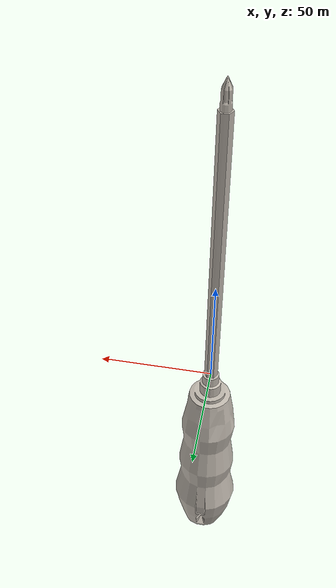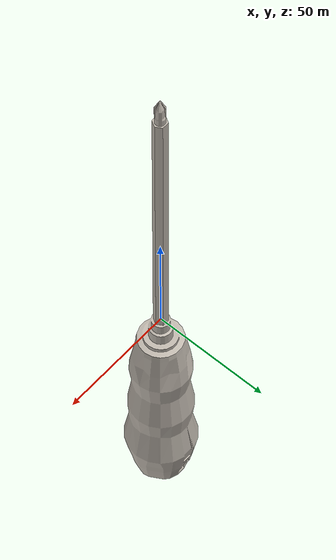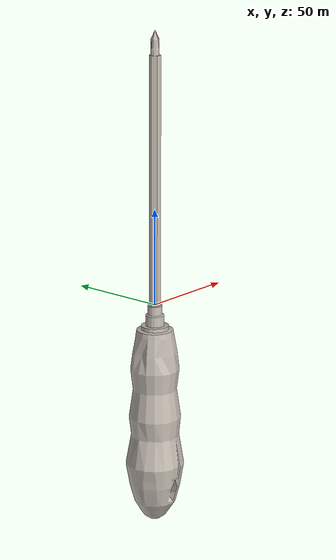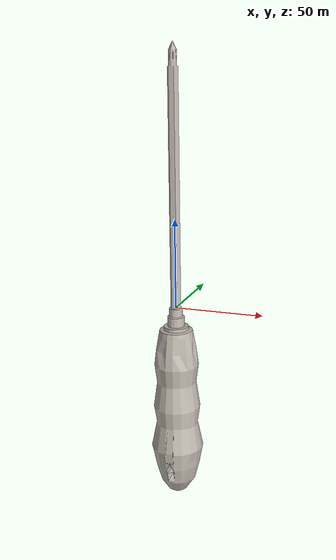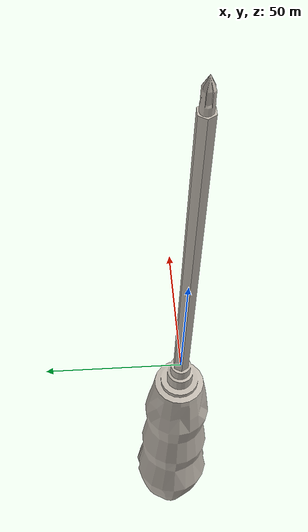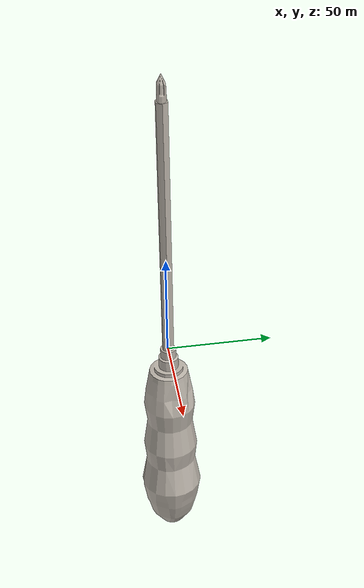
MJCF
<?xml version="1.0" encoding="utf-8"?>
<mujoco model="Screwdriver">
  <default>
    <default class="visual">
      <geom group="2" type="mesh" contype="0" conaffinity="0"/>
    </default>
    <default class="collision">
      <geom group="3" type="mesh"/>
    </default>
  </default>
  <asset>
    <texture type="2d" name="Screwdriver_BaseColor" file="Screwdriver/Screwdriver_BaseColor.png"/>
    <material name="Material_#25" texture="Screwdriver_BaseColor" specular="1.0" shininess="0.5"/>
    <mesh file="Screwdriver/Screwdriver.obj" name="Screwdriver"/>
    <mesh file="Screwdriver/Screwdriver_collision_0.obj" name="Screwdriver_collision_0"/>
    <mesh file="Screwdriver/Screwdriver_collision_1.obj" name="Screwdriver_collision_1"/>
  </asset>
  <worldbody>
    <body name="Screwdriver">
      <inertial mass="0.1" diaginertia="0.001 0.001 0.001" pos="0 0 0"/>
      <geom material="Material_#25" mesh="Screwdriver" class="visual"/>
      <geom mesh="Screwdriver_collision_0" rgba="0.5600248908033458 0.33677172059207205 0.868345624273277 1" class="collision"/>
      <geom mesh="Screwdriver_collision_1" rgba="0.13657578792952352 0.4797813068568825 0.625147751878495 1" class="collision"/>
    </body>
  </worldbody>
</mujoco>
